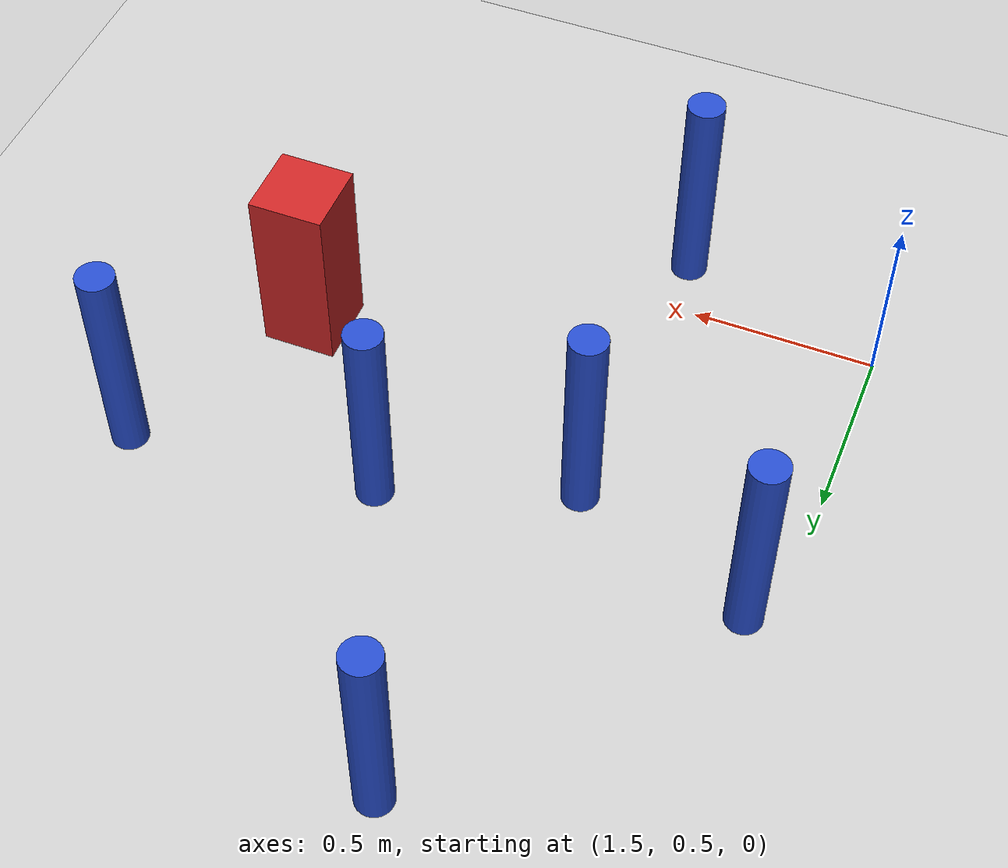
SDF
<sdf version="1.6">
 <world name="default">
  <model name="ground_plane">
   <static>1</static>
   <link name="link">
    <collision name="collision">
     <geometry><plane><normal>0 0 1</normal><size>100 100</size></plane></geometry>
     <surface><friction><ode><mu>100</mu><mu2>50</mu2></ode></friction></surface>
    </collision>
    <visual name="visual">
     <cast_shadows>0</cast_shadows>
     <geometry><plane><normal>0 0 1</normal><size>100 100</size></plane></geometry>
     <material>
      <ambient>1.0 1.0 1.0 1.0</ambient>
      <diffuse>0.8 0.8 0.8 1.0</diffuse>
      <specular>0.01 0.01 0.01 1.000000</specular>
     </material>
    </visual>
   </link>
  </model>
  <model name="pole_obstacle13">
   <static>true</static>
   <pose>3.23759024392 1.45108022356 7.38925637345e-09 -8.471706928e-08 1.24976765152e-08 -1.74513093012e-07</pose>
   <link name="link">
    <pose>0 0 0.3 0 -0 0</pose>
    <inertial>
     <mass>1</mass>
     <inertia><ixx>0.145833</ixx><ixy>0</ixy><ixz>0</ixz><iyy>0.145833</iyy><iyz>0</iyz><izz>0.125</izz></inertia>
    </inertial>
    <collision name="collision">
     <geometry><cylinder><radius>0.05</radius><length>.6</length></cylinder></geometry>
    </collision>
    <visual name="visual">
     <geometry><cylinder><radius>0.05</radius><length>.6</length></cylinder></geometry>
     <material>
      <script><name>Gazebo/Blue</name><uri>file://media/materials/scripts/gazebo.material</uri></script>
     </material>
    </visual>
   </link>
  </model>
  <model name="pole_obstacle73">
   <static>true</static>
   <pose>2.2150391815 2.18027554898 7.38925637345e-09 -8.47170692798e-08 1.24976764939e-08 -1.74513093025e-07</pose>
   <link name="link">
    <pose>0 0 0.3 0 -0 0</pose>
    <inertial>
     <mass>1</mass>
     <inertia><ixx>0.145833</ixx><ixy>0</ixy><ixz>0</ixz><iyy>0.145833</iyy><iyz>0</iyz><izz>0.125</izz></inertia>
    </inertial>
    <collision name="collision">
     <geometry><cylinder><radius>0.05</radius><length>.6</length></cylinder></geometry>
    </collision>
    <visual name="visual">
     <geometry><cylinder><radius>0.05</radius><length>.6</length></cylinder></geometry>
     <material>
      <script><name>Gazebo/Blue</name><uri>file://media/materials/scripts/gazebo.material</uri></script>
     </material>
    </visual>
   </link>
  </model>
  <model name="pole_obstacle107">
   <static>true</static>
   <pose>2.57090489926 1.3809511709 7.38925637345e-09 -8.471706928e-08 1.24976765152e-08 -1.74513093012e-07</pose>
   <link name="link">
    <pose>0 0 0.3 0 -0 0</pose>
    <inertial>
     <mass>1</mass>
     <inertia><ixx>0.145833</ixx><ixy>0</ixy><ixz>0</ixz><iyy>0.145833</iyy><iyz>0</iyz><izz>0.125</izz></inertia>
    </inertial>
    <collision name="collision">
     <geometry><cylinder><radius>0.05</radius><length>.6</length></cylinder></geometry>
    </collision>
    <visual name="visual">
     <geometry><cylinder><radius>0.05</radius><length>.6</length></cylinder></geometry>
     <material>
      <script><name>Gazebo/Blue</name><uri>file://media/materials/scripts/gazebo.material</uri></script>
     </material>
    </visual>
   </link>
  </model>
  <model name="pole_obstacle115">
   <static>true</static>
   <pose>2.07404274981 0.334553600403 7.38925637345e-09 -8.471706928e-08 1.24976765172e-08 -1.74513093013e-07</pose>
   <link name="link">
    <pose>0 0 0.3 0 -0 0</pose>
    <inertial>
     <mass>1</mass>
     <inertia><ixx>0.145833</ixx><ixy>0</ixy><ixz>0</ixz><iyy>0.145833</iyy><iyz>0</iyz><izz>0.125</izz></inertia>
    </inertial>
    <collision name="collision">
     <geometry><cylinder><radius>0.05</radius><length>.6</length></cylinder></geometry>
    </collision>
    <visual name="visual">
     <geometry><cylinder><radius>0.05</radius><length>.6</length></cylinder></geometry>
     <material>
      <script><name>Gazebo/Blue</name><uri>file://media/materials/scripts/gazebo.material</uri></script>
     </material>
    </visual>
   </link>
  </model>
  <model name="square_post_obstacle141">
   <static>true</static>
   <pose>2.96178868603 0.909391289488 1.91545236811e-07 -7.35059704564e-06 1.12565212e-07 2.39332434364e-05</pose>
   <link name="link">
    <pose>0 0 0.25 0 -0 0</pose>
    <inertial>
     <mass>100</mass>
     <inertia>
      <ixx>0.166667</ixx>
      <ixy>0</ixy>
      <ixz>0</ixz>
      <iyy>0.166667</iyy>
      <iyz>0</iyz>
      <izz>0.166667</izz>
     </inertia>
    </inertial>
    <collision name="collision"><geometry><box><size>.2 .2 .5</size></box></geometry></collision>
    <visual name="visual">
     <geometry><box><size>.2 .2 .5</size></box></geometry>
     <material>
      <script><name>Gazebo/Red</name><uri>file://media/materials/scripts/gazebo.material</uri></script>
     </material>
    </visual>
   </link>
  </model>
  <model name="pole_obstacle171">
   <static>true</static>
   <pose>1.58293455189 1.40165752624 7.38925637345e-09 -8.471706928e-08 1.24976765079e-08 -1.74513093017e-07</pose>
   <link name="link">
    <pose>0 0 0.3 0 -0 0</pose>
    <inertial>
     <mass>1</mass>
     <inertia><ixx>0.145833</ixx><ixy>0</ixy><ixz>0</ixz><iyy>0.145833</iyy><iyz>0</iyz><izz>0.125</izz></inertia>
    </inertial>
    <collision name="collision">
     <geometry><cylinder><radius>0.05</radius><length>.6</length></cylinder></geometry>
    </collision>
    <visual name="visual">
     <geometry><cylinder><radius>0.05</radius><length>.6</length></cylinder></geometry>
     <material>
      <script><name>Gazebo/Blue</name><uri>file://media/materials/scripts/gazebo.material</uri></script>
     </material>
    </visual>
   </link>
  </model>
  <model name="pole_obstacle210">
   <static>true</static>
   <pose>2.07956312528 1.20158763491 7.38925637345e-09 -8.471706928e-08 1.24976765152e-08 -1.74513093012e-07</pose>
   <link name="link">
    <pose>0 0 0.3 0 -0 0</pose>
    <inertial>
     <mass>1</mass>
     <inertia><ixx>0.145833</ixx><ixy>0</ixy><ixz>0</ixz><iyy>0.145833</iyy><iyz>0</iyz><izz>0.125</izz></inertia>
    </inertial>
    <collision name="collision">
     <geometry><cylinder><radius>0.05</radius><length>.6</length></cylinder></geometry>
    </collision>
    <visual name="visual">
     <geometry><cylinder><radius>0.05</radius><length>.6</length></cylinder></geometry>
     <material>
      <script><name>Gazebo/Blue</name><uri>file://media/materials/scripts/gazebo.material</uri></script>
     </material>
    </visual>
   </link>
  </model>
 </world>
</sdf>
